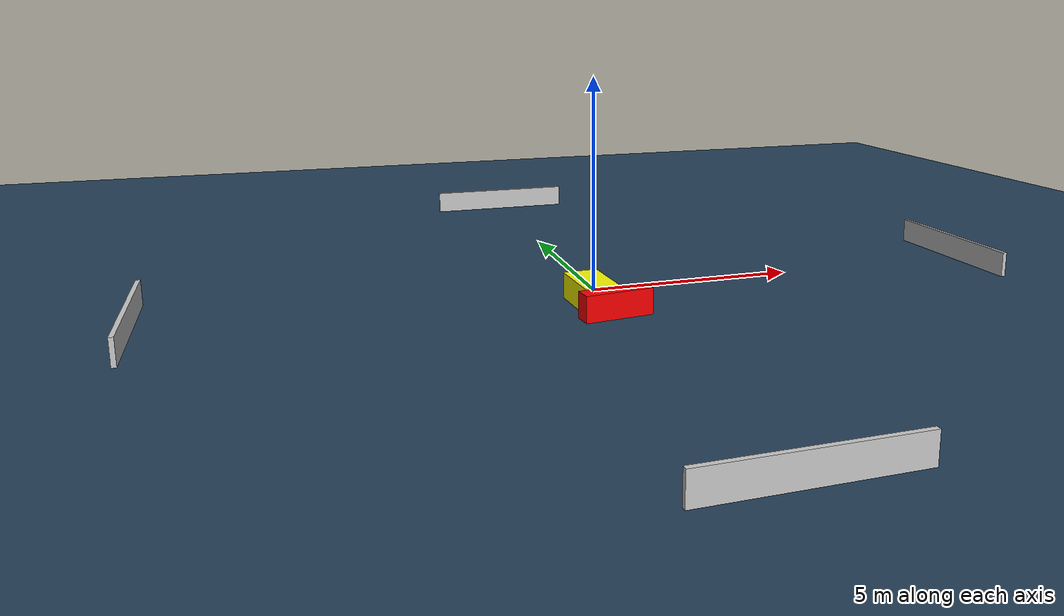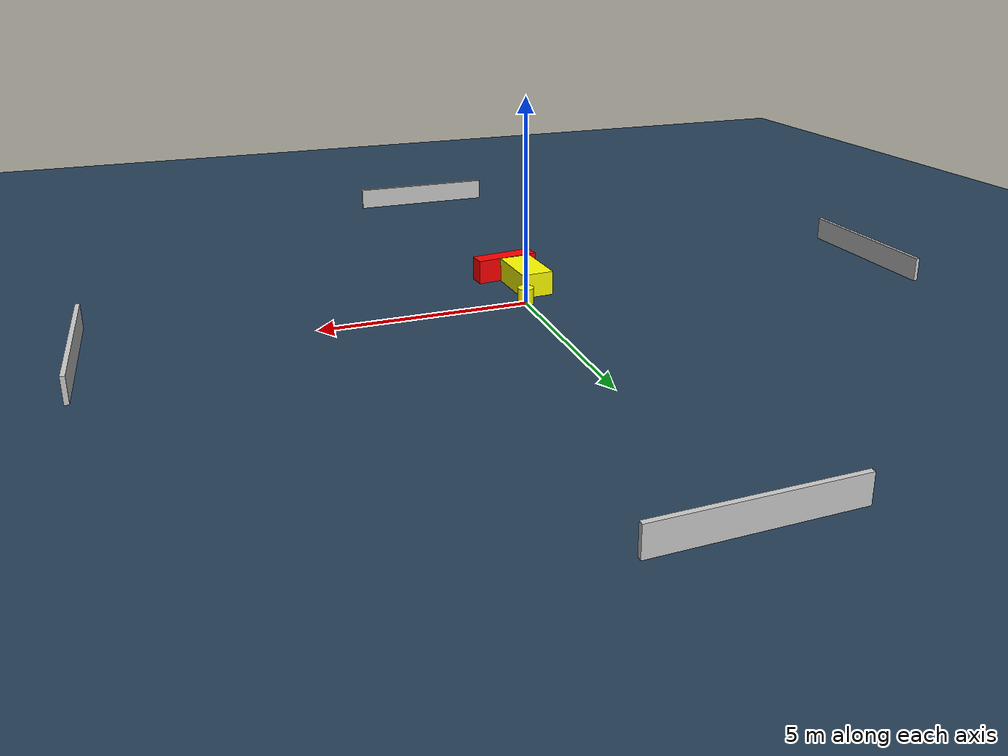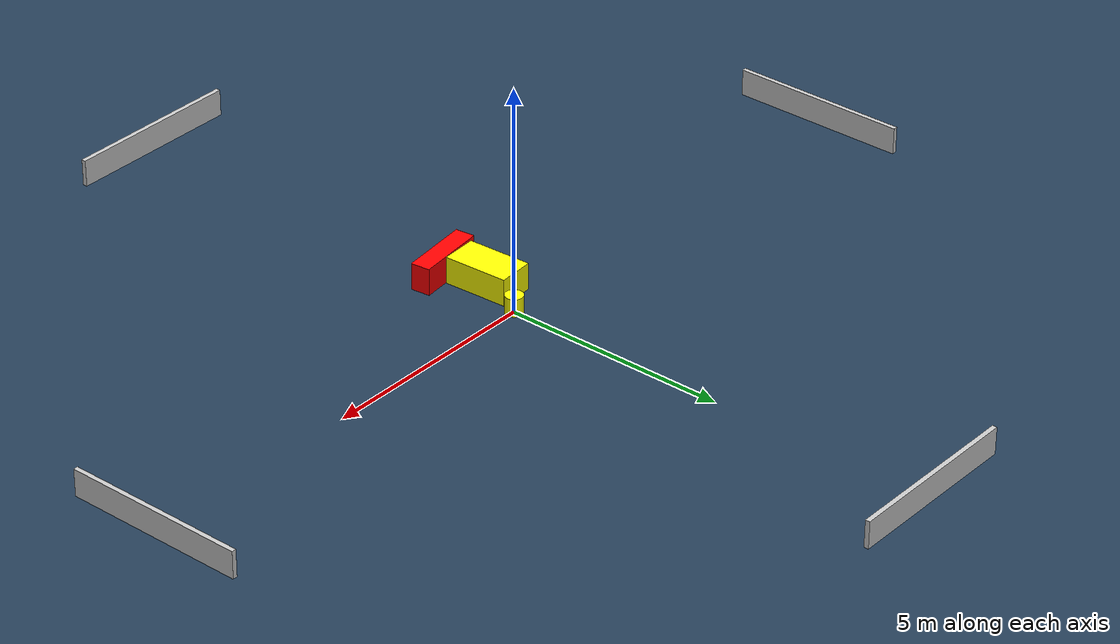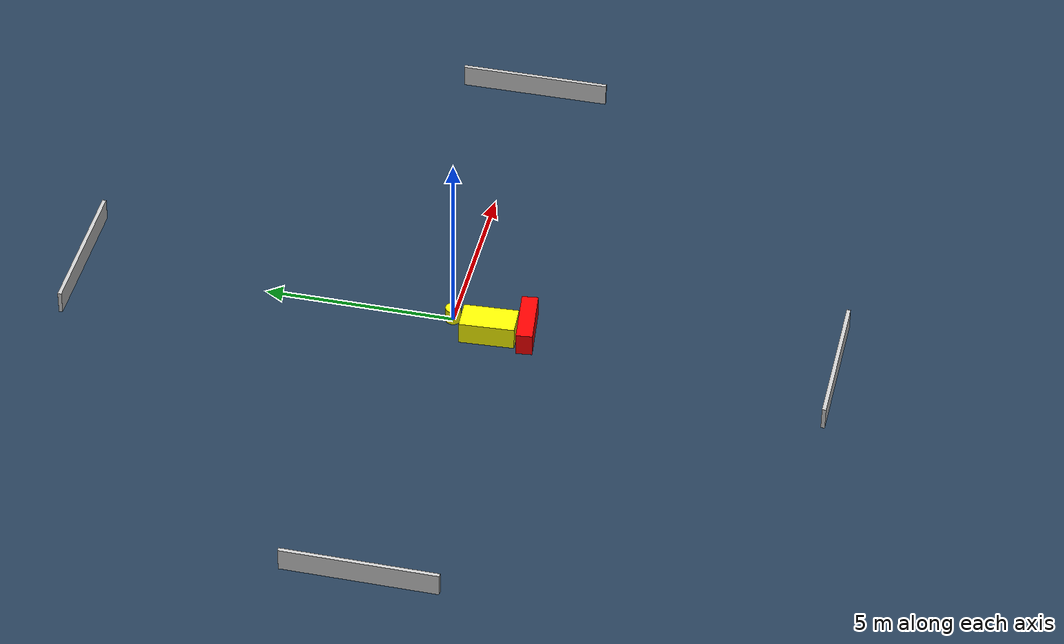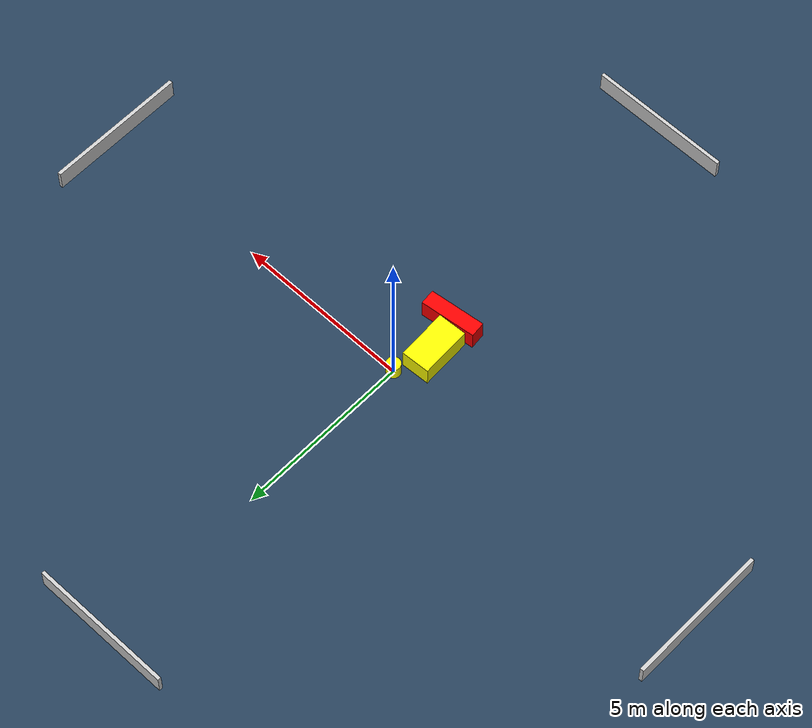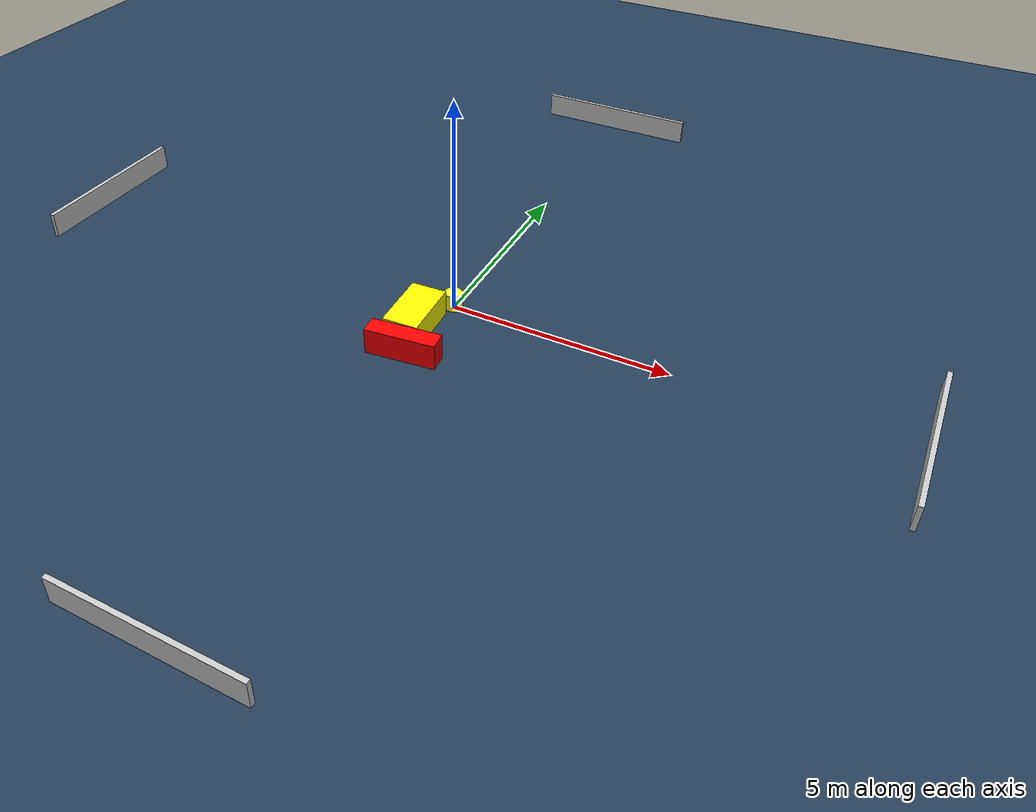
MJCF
<?xml version="1.0" ?>
<mujoco model="generated_environment">
  <option timestep="0.01" integrator="RK4" cone="elliptic"/>
  <default>
    <geom density="1"/>
  </default>
  <asset>
    <texture builtin="gradient" height="3072" name="skybox" rgb1="0.3 0.5 0.7" rgb2="0 0 0" type="skybox" width="512"/>
    <texture builtin="checker" height="300" name="groundplane" rgb1="0.2 0.3 0.4" rgb2="0.1 0.2 0.3" type="2d" width="300"/>
    <material name="groundplane" reflectance="0.2" texrepeat="5 5" texture="groundplane"/>
  </asset>
  <worldbody>
    <light dir="0 0 -1" directional="true" pos="0 0 1.5"/>
    <geom condim="3" friction="0.5 0.005 0.001" material="groundplane" name="floor" pos="0 0 0" size="0 0 0.05" type="plane"/>
    <body name="walls">
      <geom name="wall_1" condim="4" pos="-10.0 0.0 0.3" rgba="0.800000011920929 0.800000011920929 0.800000011920929 1.0" size="0.05 2.0 0.3" type="box"/>
      <geom name="wall_2" condim="4" pos="10.0 0.0 0.3" rgba="0.800000011920929 0.800000011920929 0.800000011920929 1.0" size="0.05 2.0 0.3" type="box"/>
      <geom name="wall_3" condim="4" pos="0.0 -10.0 0.3" rgba="0.800000011920929 0.800000011920929 0.800000011920929 1.0" size="2.0 0.05 0.3" type="box"/>
      <geom name="wall_4" condim="4" pos="0.0 10.0 0.3" rgba="0.800000011920929 0.800000011920929 0.800000011920929 1.0" size="2.0 0.05 0.3" type="box"/>
    </body>
    <body name="robot">
      <joint name="joint_x" type="slide" pos="0 0 0" axis="1 0 0"/>
      <joint name="joint_y" type="slide" pos="0 0 0" axis="0 1 0"/>
      <geom name="robot" type="cylinder" pos="0.0 0.0 0.2" size="0.2 0.2 0.0" mass="5.0" friction="1.0 0.005 0.0001" condim="4" rgba="1.0 1.0 0.0 1.0"/>
    </body>
    <body name="obstacle_1_movable">
      <geom name="obstacle_1_movable" condim="4" pos="-0.3983361741111958 -1.0372307119839586 0.3" euler="0 0 3.0750154792801787" friction="0.0 0.005 0.001" rgba="1.0 1.0 0.0 1.0" size="0.40508893183246575 0.7213186521424308 0.3" type="box" mass="0.1"/>
      <joint type="free"/>
    </body>
    <body name="obstacle_2_static">
      <geom name="obstacle_2_static" condim="4" pos="-0.14098551124770012 -1.9852047791604504 0.3" euler="0 0 6.646851940435932" friction="0.0 0.005 0.001" rgba="1.0 0.0 0.0 1.0" size="0.7915362412081361 0.21449938313066713 0.3" type="box"/>
    </body>
  </worldbody>
  <actuator>
    <motor name="actuator_x" joint="joint_x" gear="1" ctrlrange="-1 1"/>
    <motor name="actuator_y" joint="joint_y" gear="1" ctrlrange="-1 1"/>
  </actuator>
</mujoco>
